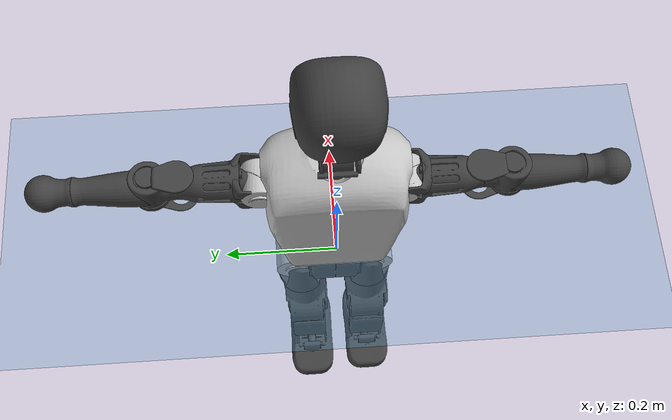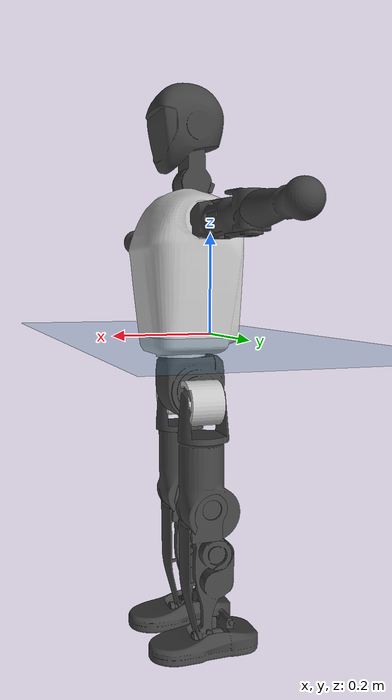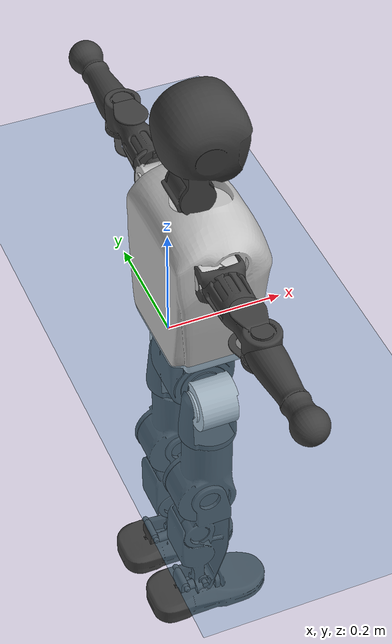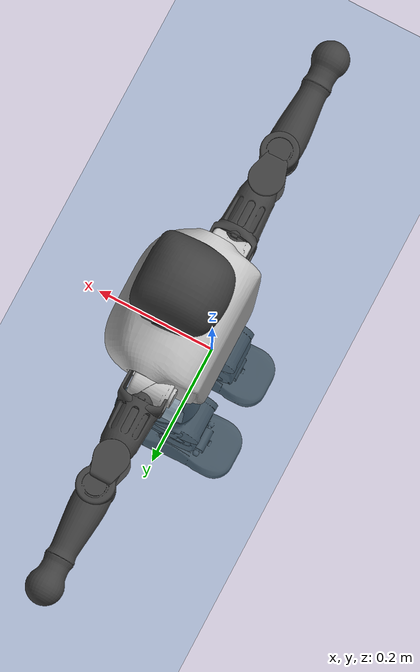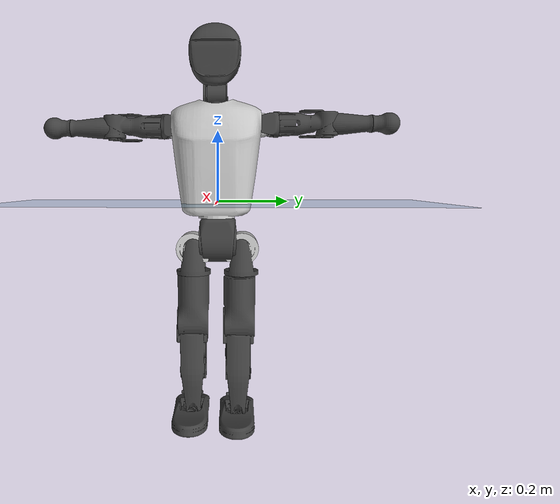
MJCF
<mujoco model="T1">
  <compiler angle="radian" assetdir="assets" balanceinertia="true" inertiafromgeom="false"/>

  <option timestep="0.005" density="1.2" viscosity="2e-05"/>

  <size nkey="1"/>

  <visual>
    <quality shadowsize="8192"/>
    <map shadowclip="0.5"/>
  </visual>

  <default>
    <default class="/">
      <joint armature="0.01" damping="0.01" frictionloss="0.1"/>
      <geom contype="0" conaffinity="0" group="1" solref="-1000 -80"/>
      <site size="0.01 0.005 0.005" group="5"/>
      <general forcelimited="true" biastype="affine" gainprm="25" biasprm="0 -25 -0.6"/>
      <default class="t1">
        <geom rgba="0.25 0.25 0.25 1"/>
        <default class="visual">
          <geom type="mesh" group="2"/>
        </default>
        <default class="collision">
          <geom group="3"/>
        </default>
        <default class="foot">
          <geom size="0.1115 0.05 0.015" type="box" condim="6" group="4" priority="1" solimp="0.015 1 0.015"/>
        </default>
        <default class="reward_collision_sphere">
          <geom group="5" rgba="1 0 0 1"/>
        </default>
      </default>
    </default>
  </default>

  <asset>
    <texture type="skybox" colorspace="auto" name="//unnamed_texture_0" builtin="gradient" rgb1="0.95 0.95 0.95" rgb2="0.95 0.95 0.95" width="100" height="600"/>
    <texture type="2d" colorspace="auto" name="texplane" builtin="checker" rgb1="0.345 0.575 0.748" rgb2="0.345 0.575 0.748" markrgb="1 1 1" width="512" height="512"/>
    <material name="MatPlane" class="/" texture="texplane" texuniform="true" texrepeat="2 2" specular="0.9"/>
    <mesh name="Trunk" class="/" file="Trunk.stl"/>
    <mesh name="H1" class="/" file="H1.stl"/>
    <mesh name="H2" class="/" file="H2.stl"/>
    <mesh name="AL1" class="/" file="AL1.stl"/>
    <mesh name="AL2" class="/" file="AL2.stl"/>
    <mesh name="AL3" class="/" file="AL3.stl"/>
    <mesh name="left_hand_link" class="/" file="left_hand_link.stl"/>
    <mesh name="AR1" class="/" file="AR1.stl"/>
    <mesh name="AR2" class="/" file="AR2.stl"/>
    <mesh name="AR3" class="/" file="AR3.stl"/>
    <mesh name="right_hand_link" class="/" file="right_hand_link.stl"/>
    <mesh name="Waist" class="/" file="Waist.stl"/>
    <mesh name="Hip_Pitch_Left" class="/" file="Hip_Pitch_Left.stl"/>
    <mesh name="Hip_Roll_Left" class="/" file="Hip_Roll_Left.stl"/>
    <mesh name="Hip_Yaw_Left" class="/" file="Hip_Yaw_Left.stl"/>
    <mesh name="Shank_Left" class="/" file="Shank_Left.stl"/>
    <mesh name="Ankle_Cross_Left" class="/" file="Ankle_Cross_Left.stl"/>
    <mesh name="left_foot_link" class="/" file="left_foot_link.stl"/>
    <mesh name="Hip_Pitch_Right" class="/" file="Hip_Pitch_Right.stl"/>
    <mesh name="Hip_Roll_Right" class="/" file="Hip_Roll_Right.stl"/>
    <mesh name="Hip_Yaw_Right" class="/" file="Hip_Yaw_Right.stl"/>
    <mesh name="Shank_Right" class="/" file="Shank_Right.stl"/>
    <mesh name="Ankle_Cross_Right" class="/" file="Ankle_Cross_Right.stl"/>
    <mesh name="right_foot_link" class="/" file="right_foot_link.stl"/>
  </asset>

  <worldbody>
    <geom name="floor" class="/" size="100 100 0.125" type="plane" group="0" material="MatPlane"/>
    <light name="toplight_shadow" class="/" pos="0 0 5" dir="0.0990148 0.0990148 -0.990148" type="directional" ambient="0.04 0.04 0.04" diffuse="0.55 0.55 0.55" specular="0.12 0.12 0.12"/>
    <light name="toplight_fill" class="/" pos="0 0 5" dir="0.0990148 0.0990148 -0.990148" type="directional" castshadow="false" ambient="0.04 0.04 0.04" diffuse="0.3 0.3 0.3" specular="0.08 0.08 0.08"/>
    <body name="trunk" childclass="t1" pos="-0.000767217 -0.00105538 0.000143662" quat="0.999998 0.00111009 0.00135843 0.000463477">
      <inertial pos="0.0375885 0.00158542 0.0980503" quat="0.999991 0.00156821 -0.00359252 0.0013621" mass="5.3247" diaginertia="0.0114495 0.0111275 0.0451844"/>
      <joint name="//unnamed_joint_0" type="free" armature="0" damping="0" frictionloss="0"/>
      <geom name="//unnamed_geom_1" class="visual" rgba="0.76 0.76 0.76 1" mesh="Trunk"/>
      <geom name="//unnamed_geom_2" class="collision" size="0.0571839 0.0762453 0.114368" pos="0.0397432 0 0.113472" type="box"/>
      <geom name="//unnamed_geom_3" class="reward_collision_sphere" size="0.087682" pos="0.0397432 0 0.0945599"/>
      <geom name="//unnamed_geom_4" class="reward_collision_sphere" size="0.0114368" pos="0.0397432 0.0577466 0"/>
      <geom name="//unnamed_geom_5" class="reward_collision_sphere" size="0.0114368" pos="0.0397432 -0.0577466 0"/>
      <geom name="//unnamed_geom_6" class="reward_collision_sphere" size="0.0114368" pos="0.0397432 0.0726927 0.170208"/>
      <geom name="//unnamed_geom_7" class="reward_collision_sphere" size="0.0114368" pos="0.0397432 -0.0726927 0.170208"/>
      <site name="imu" pos="-0.00300376 0.0126021 0.00312075" size="0.00762453"/>
      <camera name="track" pos="0 -1.35874 0" quat="0.707107 0.707107 0 0" mode="trackcom"/>
      <camera name="ego_camera" pos="0.0808112 0 0.397152" quat="-0.5 -0.5 0.5 0.5"/>
      <body name="H1" pos="0.0383592 0.000933522 0.232883" quat="1 -0.000198996 0.000692108 -0.000407622">
        <inertial pos="-0.00156486 -0.00549091 0.0556226" quat="0.759216 -0.0265177 -0.00648433 0.650266" mass="0.20763" diaginertia="3.26486e-05 3.54259e-05 0.000121531"/>
        <joint name="AAHead_yaw" pos="0 0 0" axis="0.0164985 0.00643012 0.999843" range="-1.6153 1.5271" armature="0.00761306" damping="0.0119781" frictionloss="0.0793096"/>
        <geom name="//unnamed_geom_8" class="visual" mesh="H1"/>
        <body name="H2" pos="-0.0013389 -0.00384636 0.0597627" quat="0.999999 -0.00125209 -1.73872e-05 -0.000376933">
          <inertial pos="0.00162513 -0.0024265 0.0921748" quat="0.987443 0.105271 -0.0759887 -0.0900026" mass="0.272043" diaginertia="0.000246827 0.000281726 0.00127447"/>
          <joint name="Head_pitch" pos="0 0 0" axis="-0.0076965 -0.999964 -0.00352067" range="-1.22272 0.342926" armature="0.00909082" damping="0.00212164" frictionloss="0.0553118"/>
          <geom name="//unnamed_geom_9" class="visual" mesh="H2"/>
          <geom name="//unnamed_geom_10" class="collision" size="0.0609962" pos="0.00662387 0 0.104016"/>
          <geom name="//unnamed_geom_11" class="reward_collision_sphere" size="0.0686207" pos="0.0132477 0 0.0945599"/>
        </body>
      </body>
      <body name="AL1" pos="0.0378855 0.0781377 0.211308" quat="1 0.000101078 0.000366299 -2.96287e-05">
        <inertial pos="0.00322723 0.0322242 -0.00354075" quat="0.499503 0.49266 -0.505559 0.502189" mass="0.229112" diaginertia="0.000167885 0.000181733 0.000217957"/>
        <joint name="Left_Shoulder_Pitch" pos="0 0 0" axis="-0.00661223 0.999802 0.0187441" stiffness="0.00841547" range="-3.31492 1.20161" armature="0.00667939" damping="0.00553897" frictionloss="0.0735522"/>
        <geom name="//unnamed_geom_12" class="visual" rgba="0.76 0.76 0.76 1" mesh="AL1"/>
        <body name="AL2" pos="0.00481887 0.0368442 0.000639529" quat="1 -1.64881e-05 -3.53802e-07 -0.000106074">
          <inertial pos="0.00346259 0.0249178 0.00224969" quat="0.486618 0.506749 -0.489672 0.516361" mass="0.0752136" diaginertia="5.17196e-05 5.01339e-05 0.000137773"/>
          <joint name="Left_Shoulder_Roll" pos="0 0 0" axis="-0.999974 -0.00380198 0.00605142" range="-1.57722 1.78595" armature="0.00784926" damping="0.00908997" frictionloss="0.0789767"/>
          <geom name="//unnamed_geom_13" class="visual" mesh="AL2"/>
          <body name="AL3" pos="-0.000521062 0.0406888 0.00165953" quat="1 0.000320631 -9.69142e-05 -0.000128544">
            <inertial pos="-0.00068471 0.05756 0.000935871" quat="0.719651 0.694286 -0.00219563 -0.00809737" mass="0.435161" diaginertia="0.00161421 0.00178543 0.000485994"/>
            <joint name="Left_Elbow_Pitch" pos="0 0 0" axis="-0.00419805 -0.999991 -3.98636e-05" range="-2.31871 2.21906" armature="0.00736639" damping="0" frictionloss="0.0592752"/>
            <geom name="//unnamed_geom_14" class="visual" mesh="AL3"/>
            <geom name="//unnamed_geom_15" class="collision" size="0.0228736 0.0571839" pos="0 0.0339686 0" quat="0.707105 0.707108 0 0" type="cylinder"/>
            <geom name="//unnamed_geom_16" class="reward_collision_sphere" size="0.0274483"/>
            <body name="left_hand_link" pos="-0.00265626 0.0998583 -0.000107513" quat="0.999999 0.000874925 -0.000657155 -0.00041121">
              <inertial pos="-0.00291446 0.0750645 0.00291651" quat="0.708748 0.705374 0.00941806 -0.00602112" mass="0.145583" diaginertia="0.00105414 0.00113063 0.000158764"/>
              <joint name="Left_Elbow_Yaw" pos="0 0 0" axis="0.000737998 -0.0057898 0.999983" range="-2.45769 -0.0509142" armature="0.00763307" damping="0.0146934" frictionloss="0.0759349"/>
              <geom name="//unnamed_geom_17" class="visual" mesh="left_hand_link"/>
              <geom name="//unnamed_geom_18" class="collision" size="0.0228736 0.0667146" pos="0 0.0883183 0" quat="0.707105 0.707108 0 0" type="cylinder"/>
              <geom name="//unnamed_geom_19" class="reward_collision_sphere" size="0.0381226"/>
              <geom name="//unnamed_geom_20" class="reward_collision_sphere" size="0.0266858" pos="0 0.0747309 0"/>
              <geom name="//unnamed_geom_21" class="reward_collision_sphere" size="0.0266858" pos="0 0.146065 0"/>
            </body>
          </body>
        </body>
      </body>
      <body name="AR1" pos="0.035045 -0.0667934 0.205342" quat="0.999997 0.000516214 -0.00222095 -0.000321526">
        <inertial pos="-0.000784116 -0.0325877 0.00162423" quat="0.504657 0.494759 -0.504501 0.495998" mass="0.222559" diaginertia="0.000168148 0.000174837 0.000210847"/>
        <joint name="Right_Shoulder_Pitch" pos="0 0 0" axis="0.00466312 -0.999878 -0.0149217" range="-1.22354 3.29166" armature="0.00678841" damping="0.00251394" frictionloss="0.0704532"/>
        <geom name="//unnamed_geom_22" class="visual" rgba="0.76 0.76 0.76 1" mesh="AR1"/>
        <body name="AR2" pos="-0.000657582 -0.0286857 0.00383029" quat="1 -0.000634442 -2.80766e-05 0.000699674">
          <inertial pos="0.000514645 -0.0240622 -0.000888973" quat="0.510679 0.490303 -0.509922 0.488662" mass="0.0713344" diaginertia="5.13064e-05 5.08955e-05 0.000135874"/>
          <joint name="Right_Shoulder_Roll" pos="0 0 0" axis="-0.999901 0.0046542 -0.0132718" range="-1.76432 1.54782" armature="0.00774798" damping="0.0143334" frictionloss="0.068195"/>
          <geom name="//unnamed_geom_23" class="visual" mesh="AR2"/>
          <body name="AR3" pos="-0.000670006 -0.0416852 -0.000314987" quat="0.999999 -0.000482305 0.00104004 0.000723919">
            <inertial pos="-0.0055586 -0.0570425 0.00222121" quat="0.711381 0.702717 0.0110681 0.00167878" mass="0.445923" diaginertia="0.00157451 0.00169428 0.00043634"/>
            <joint name="Right_Elbow_Pitch" pos="0 0 0" axis="0.000221863 0.999994 -0.00334247" range="-2.30734 2.38658" armature="0.00743421" damping="0.00677198" frictionloss="0.0805787"/>
            <geom name="//unnamed_geom_24" class="visual" mesh="AR3"/>
            <geom name="//unnamed_geom_25" class="collision" size="0.0228736 0.0571839" pos="0 -0.0339686 0" quat="0.707105 0.707108 0 0" type="cylinder"/>
            <geom name="//unnamed_geom_26" class="reward_collision_sphere" size="0.0274483"/>
            <body name="right_hand_link" pos="-0.00178278 -0.0996896 -0.00324569" quat="0.999999 -0.000167439 9.56092e-05 0.000995292">
              <inertial pos="-0.00458827 -0.0722222 0.00368443" quat="0.705544 0.708656 0.000406175 -0.00371721" mass="0.158881" diaginertia="0.00118486 0.00125374 0.000164853"/>
              <joint name="Right_Elbow_Yaw" pos="0 0 0" axis="-0.0070382 0.00381081 0.999968" range="0.000316842 2.49448" armature="0.00694827" damping="0.0164964" frictionloss="0.0736133"/>
              <geom name="//unnamed_geom_27" class="visual" mesh="right_hand_link"/>
              <geom name="//unnamed_geom_28" class="collision" size="0.0228736 0.0667146" pos="0 -0.0883183 0" quat="0.707105 0.707108 0 0" type="cylinder"/>
              <geom name="//unnamed_geom_29" class="reward_collision_sphere" size="0.0381226"/>
              <geom name="//unnamed_geom_30" class="reward_collision_sphere" size="0.0266858" pos="0 -0.0747309 0"/>
              <geom name="//unnamed_geom_31" class="reward_collision_sphere" size="0.0266858" pos="0 -0.146065 0"/>
            </body>
          </body>
        </body>
      </body>
      <body name="Waist" pos="0.045187 0.0028429 -0.108005" quat="1 0.000183564 0.000263846 6.5919e-05">
        <inertial pos="0.00542885 -0.00178786 0.00493172" quat="0.983547 -0.00260499 -0.180632 -0.00103972" mass="1.17223" diaginertia="0.00066308 0.000759497 0.00363981"/>
        <joint name="Waist" pos="0 0 0" axis="0.00848479 0.00675313 0.999941" range="-1.59741 1.53604" armature="0.00819782" damping="0.0263998" frictionloss="0.0778469"/>
        <geom name="//unnamed_geom_32" class="visual" mesh="Waist"/>
        <body name="Hip_Pitch_Left" pos="0.000662029 0.0691125 5.32798e-05" quat="1 -0.000125875 -2.37447e-05 -1.78817e-05">
          <inertial pos="-0.00069069 -0.00389749 -0.0140962" quat="0.97674 0.214081 0.00945226 0.00765888" mass="0.454277" diaginertia="0.000226289 0.000208419 0.000927674"/>
          <joint name="Left_Hip_Pitch" pos="0 0 0" axis="-0.00401192 0.999963 0.00758663" stiffness="0.000654278" range="-1.75499 1.51829" armature="0.00667571" damping="0.0122232" frictionloss="0.0761423"/>
          <geom name="//unnamed_geom_33" class="visual" rgba="0.76 0.76 0.76 1" mesh="Hip_Pitch_Left"/>
          <body name="Hip_Roll_Left" pos="-0.00353364 -0.00363899 -0.0185406" quat="0.999999 -0.00113244 -0.000141992 -0.000124097">
            <inertial pos="-0.00151334 -0.00049204 -0.0486017" quat="0.709056 -0.00674308 0.00405547 0.705108" mass="0.166915" diaginertia="0.000209658 0.000219482 0.000394043"/>
            <joint name="Left_Hip_Roll" pos="0 0 0" axis="-0.99996 0.000924542 0.00887973" stiffness="0.0149489" range="-1.60223 0.127979" armature="0.00859255" damping="0.0174268" frictionloss="0.083767"/>
            <geom name="//unnamed_geom_34" class="visual" mesh="Hip_Roll_Left"/>
            <geom name="//unnamed_geom_35" class="reward_collision_sphere" size="0.0419349"/>
            <body name="Hip_Yaw_Left" pos="-0.000301046 -0.00428257 -0.0838593" quat="1 -0.000455122 -0.000163108 0.00041123">
              <inertial pos="-0.00544473 -0.000387469 -0.0822611" quat="0.702447 -0.0240774 -0.0316855 0.710623" mass="0.992885" diaginertia="0.00341856 0.0039114 0.00201359"/>
              <joint name="Left_Hip_Yaw" pos="0 0 0" axis="-0.000959563 0.00361547 -0.999993" range="-1.06904 0.894623" armature="0.0078087" damping="0.036647" frictionloss="0.0730592"/>
              <geom name="//unnamed_geom_36" class="visual" mesh="Hip_Yaw_Left"/>
              <geom name="//unnamed_geom_37" class="collision" size="0.0381226 0.0609962" type="cylinder"/>
              <body name="Shank_Left" pos="-0.00823482 -0.00345209 -0.123423" quat="1 0.000386549 0.000129502 0.000130542">
                <inertial pos="-0.00462108 0.00113106 -0.115374" quat="0.996948 0.0108317 -0.0236379 0.0736059" mass="0.738833" diaginertia="0.00430087 0.00489105 0.00140796"/>
                <joint name="Left_Knee_Pitch" pos="0 0 0" axis="0.0111943 0.999922 -0.00559867" range="0.010747 2.32787" armature="0.00781345" damping="0" frictionloss="0.0671922"/>
                <geom name="//unnamed_geom_38" class="visual" mesh="Shank_Left"/>
                <geom name="//unnamed_geom_39" class="collision" size="0.0381226 0.0571839" pos="0 0 -0.113472" type="cylinder"/>
                <geom name="//unnamed_geom_40" class="reward_collision_sphere" size="0.0495594"/>
                <body name="Ankle_Cross_Left" pos="-0.00363352 -0.00350788 -0.263128" quat="0.999999 -0.00134668 -0.000119108 -0.000342716">
                  <inertial pos="0.00120158 -0.00357936 -0.00813805" quat="0.442586 0.552368 0.548063 0.445683" mass="0.0324736" diaginertia="3.69922e-06 3.86651e-06 8.49729e-06"/>
                  <joint name="Left_Ankle_Pitch" pos="0 0 0" axis="-0.00541509 0.999955 -0.00784193" stiffness="0.00403121" range="-0.868794 0.39946" armature="0.0088067" damping="0.0171343" frictionloss="0.078061"/>
                  <geom name="//unnamed_geom_41" class="visual" mesh="Ankle_Cross_Left"/>
                  <body name="left_foot_link" pos="-0.00278029 0.000183726 -0.0147788" quat="0.999997 -0.00161085 0.000655048 -0.0015078">
                    <inertial pos="0.00335324 -6.50427e-05 -0.0104604" quat="0.00282076 0.619113 -0.00113331 0.785296" mass="0.298596" diaginertia="0.000340779 0.000350537 0.00159077"/>
                    <joint name="Left_Ankle_Roll" pos="0 0 0" axis="-0.999984 0.00564171 -0.000818613" stiffness="0.0101567" range="-0.379205 0.514987" armature="0.00792638" damping="0" frictionloss="0.0894193"/>
                    <geom name="//unnamed_geom_42" class="visual" mesh="left_foot_link"/>
                    <geom name="left_foot" class="foot" size="0.0963281 0.0377356 0.0104343" pos="0.00662387 0 -0.014184"/>
                    <geom name="//unnamed_geom_44" class="reward_collision_sphere" size="0.0396475" pos="0.00662387 0 -0.014184"/>
                    <geom name="//unnamed_geom_45" class="reward_collision_sphere" size="0.0228736" pos="0.0629268 -0.0156255 -0.014184"/>
                    <geom name="//unnamed_geom_46" class="reward_collision_sphere" size="0.0228736" pos="-0.0463671 -0.0156255 -0.014184"/>
                    <site name="left_foot" class="foot" pos="0.00662387 0 -0.014184" size="0.00762453"/>
                  </body>
                </body>
              </body>
            </body>
          </body>
        </body>
        <body name="Hip_Pitch_Right" pos="0.00562435 -0.0711574 -0.000278419" quat="0.999999 0.000537675 -0.000342985 0.00129476">
          <inertial pos="0.00172334 0.00627769 -0.0167632" quat="0.975065 -0.221361 0.0155393 0.00258436" mass="0.455597" diaginertia="0.000221415 0.000214168 0.000897561"/>
          <joint name="Right_Hip_Pitch" pos="0 0 0" axis="-0.00377163 -0.999975 -0.00600048" range="-1.60915 1.82599" armature="0.00743007" damping="0.0128128" frictionloss="0.0699059"/>
          <geom name="//unnamed_geom_47" class="visual" rgba="0.76 0.76 0.76 1" mesh="Hip_Pitch_Right"/>
          <body name="Hip_Roll_Right" pos="-0.00388879 0.00258413 -0.0170513" quat="1 -5.73636e-05 7.68691e-05 5.2304e-05">
            <inertial pos="0.00256554 0.00166188 -0.0514766" quat="0.707185 -0.00242408 -0.00322093 0.707017" mass="0.163796" diaginertia="0.000224056 0.00021705 0.000393546"/>
            <joint name="Right_Hip_Roll" pos="0 0 0" axis="-0.999941 0.00786513 -0.00746995" range="-0.198038 1.66482" armature="0.00863009" damping="0.0248557" frictionloss="0.0920619"/>
            <geom name="//unnamed_geom_48" class="visual" mesh="Hip_Roll_Right"/>
            <geom name="//unnamed_geom_49" class="reward_collision_sphere" size="0.0419349"/>
            <body name="Hip_Yaw_Right" pos="-0.00333551 -0.00144927 -0.078393" quat="1 0.000527587 7.61879e-05 -4.39864e-05">
              <inertial pos="-0.00696721 0.000144436 -0.0847458" quat="0.70825 -0.0081291 -0.024821 0.705479" mass="0.979398" diaginertia="0.00346191 0.00367112 0.00206251"/>
              <joint name="Right_Hip_Yaw" pos="0 0 0" axis="0.0212971 -0.0158127 -0.999648" range="-0.997361 1.00352" armature="0.00822813" damping="0" frictionloss="0.0823514"/>
              <geom name="//unnamed_geom_50" class="visual" mesh="Hip_Yaw_Right"/>
              <geom name="//unnamed_geom_51" class="collision" size="0.0381226 0.0609962" type="cylinder"/>
              <body name="Shank_Right" pos="-0.0127849 -0.00351627 -0.127541" quat="1 2.31412e-05 -4.47644e-05 6.21899e-05">
                <inertial pos="-0.00343934 0.00182151 -0.114118" quat="0.998919 -0.0108781 -0.0385654 -0.0235581" mass="0.760389" diaginertia="0.00429068 0.00498682 0.00145423"/>
                <joint name="Right_Knee_Pitch" pos="0 0 0" axis="-0.0161016 -0.999869 0.0018577" stiffness="0.0209915" range="-2.32124 -0.0103131" armature="0.0075563" damping="0" frictionloss="0.0719738"/>
                <geom name="//unnamed_geom_52" class="visual" mesh="Shank_Right"/>
                <geom name="//unnamed_geom_53" class="collision" size="0.0381226 0.0571839" pos="0 0 -0.113472" type="cylinder"/>
                <geom name="//unnamed_geom_54" class="reward_collision_sphere" size="0.0495594"/>
                <body name="Ankle_Cross_Right" pos="0.00403091 -0.00280211 -0.261028" quat="0.999999 -5.26664e-05 -0.00113502 -0.000617235">
                  <inertial pos="-0.00441613 -0.00151052 -0.00772039" quat="0.443138 0.550836 0.551457 0.442835" mass="0.0319831" diaginertia="3.95793e-06 3.72884e-06 8.70339e-06"/>
                  <joint name="Right_Ankle_Pitch" pos="0 0 0" axis="-0.00130569 -0.999994 0.00322039" stiffness="0.00556807" range="-0.238315 0.866514" armature="0.00824037" damping="0.00562736" frictionloss="0.0674036"/>
                  <geom name="//unnamed_geom_55" class="visual" mesh="Ankle_Cross_Right"/>
                  <body name="right_foot_link" pos="-0.000709997 -0.00415161 -0.0108885" quat="1 -4.08408e-05 1.07399e-05 6.10672e-05">
                    <inertial pos="-0.000174247 -0.00160425 -0.0091642" quat="-0.00511656 0.621221 0.00230305 0.783616" mass="0.274876" diaginertia="0.000324787 0.000334256 0.00165548"/>
                    <joint name="Right_Ankle_Roll" pos="0 0 0" axis="-0.999933 -0.00622991 -0.00978164" range="-0.487812 0.428356" armature="0.00811742" damping="0.00983344" frictionloss="0.0934715"/>
                    <geom name="//unnamed_geom_56" class="visual" mesh="right_foot_link"/>
                    <geom name="right_foot" class="foot" size="0.0940265 0.0435856 0.0107938" pos="0.00662387 0 -0.014184"/>
                    <geom name="//unnamed_geom_58" class="reward_collision_sphere" size="0.0304981"/>
                    <geom name="//unnamed_geom_59" class="reward_collision_sphere" size="0.0228736" pos="0.00662387 0 -0.014184"/>
                    <geom name="//unnamed_geom_60" class="reward_collision_sphere" size="0.0228736" pos="0.0629268 0.0156255 -0.014184"/>
                    <geom name="//unnamed_geom_61" class="reward_collision_sphere" size="0.0228736" pos="-0.0463671 0.0156255 -0.014184"/>
                    <site name="right_foot" class="foot" pos="0.00662387 0 -0.014184" size="0.00762453"/>
                  </body>
                </body>
              </body>
            </body>
          </body>
        </body>
      </body>
    </body>
  </worldbody>

  <contact>
    <pair class="/" geom1="floor" geom2="left_foot" name="//unnamed_contact_0"/>
    <pair class="/" geom1="floor" geom2="right_foot" name="//unnamed_contact_1"/>
  </contact>

  <actuator>
    <general name="AAHead_yaw" class="/" joint="AAHead_yaw" forcerange="-4.88608 4.88608" gainprm="21.3186" biasprm="0 -21.3186 -0.463418"/>
    <general name="Head_pitch" class="/" joint="Head_pitch" forcerange="-5.80429 5.80429" gainprm="21.3186" biasprm="0 -21.3186 -0.463418"/>
    <general name="Left_Shoulder_Pitch" class="/" joint="Left_Shoulder_Pitch" forcerange="-16.6122 16.6122" gainprm="21.3186" biasprm="0 -21.3186 -0.463418"/>
    <general name="Left_Shoulder_Roll" class="/" joint="Left_Shoulder_Roll" forcerange="-14.1352 14.1352" gainprm="21.3186" biasprm="0 -21.3186 -0.463418"/>
    <general name="Left_Elbow_Pitch" class="/" joint="Left_Elbow_Pitch" forcerange="-13.1857 13.1857" gainprm="21.3186" biasprm="0 -21.3186 -0.463418"/>
    <general name="Left_Elbow_Yaw" class="/" joint="Left_Elbow_Yaw" forcerange="-13.8921 13.8921" gainprm="21.3186" biasprm="0 -21.3186 -0.463418"/>
    <general name="Right_Shoulder_Pitch" class="/" joint="Right_Shoulder_Pitch" forcerange="-12.5921 12.5921" gainprm="21.3186" biasprm="0 -21.3186 -0.463418"/>
    <general name="Right_Shoulder_Roll" class="/" joint="Right_Shoulder_Roll" forcerange="-13.8691 13.8691" gainprm="21.3186" biasprm="0 -21.3186 -0.463418"/>
    <general name="Right_Elbow_Pitch" class="/" joint="Right_Elbow_Pitch" forcerange="-13.4268 13.4268" gainprm="21.3186" biasprm="0 -21.3186 -0.463418"/>
    <general name="Right_Elbow_Yaw" class="/" joint="Right_Elbow_Yaw" forcerange="-13.3706 13.3706" gainprm="21.3186" biasprm="0 -21.3186 -0.463418"/>
    <general name="Waist" class="/" joint="Waist" forcerange="-22.3297 22.3297" gainprm="21.3186" biasprm="0 -21.3186 -0.463418"/>
    <general name="Left_Hip_Pitch" class="/" joint="Left_Hip_Pitch" forcerange="-32.5012 32.5012" gainprm="21.3186" biasprm="0 -21.3186 -0.463418"/>
    <general name="Left_Hip_Roll" class="/" joint="Left_Hip_Roll" forcerange="-22.0502 22.0502" gainprm="21.3186" biasprm="0 -21.3186 -0.463418"/>
    <general name="Left_Hip_Yaw" class="/" joint="Left_Hip_Yaw" forcerange="-22.1258 22.1258" gainprm="21.3186" biasprm="0 -21.3186 -0.463418"/>
    <general name="Left_Knee_Pitch" class="/" joint="Left_Knee_Pitch" forcerange="-48.4123 48.4123" gainprm="21.3186" biasprm="0 -21.3186 -0.463418"/>
    <general name="Left_Ankle_Pitch" class="/" joint="Left_Ankle_Pitch" forcerange="-12.8729 12.8729" gainprm="21.3186" biasprm="0 -21.3186 -0.463418"/>
    <general name="Left_Ankle_Roll" class="/" joint="Left_Ankle_Roll" forcerange="-12.7227 12.7227" gainprm="21.3186" biasprm="0 -21.3186 -0.463418"/>
    <general name="Right_Hip_Pitch" class="/" joint="Right_Hip_Pitch" forcerange="-35.1377 35.1377" gainprm="21.3186" biasprm="0 -21.3186 -0.463418"/>
    <general name="Right_Hip_Roll" class="/" joint="Right_Hip_Roll" forcerange="-20.2349 20.2349" gainprm="21.3186" biasprm="0 -21.3186 -0.463418"/>
    <general name="Right_Hip_Yaw" class="/" joint="Right_Hip_Yaw" forcerange="-23.9428 23.9428" gainprm="21.3186" biasprm="0 -21.3186 -0.463418"/>
    <general name="Right_Knee_Pitch" class="/" joint="Right_Knee_Pitch" forcerange="-46.3072 46.3072" gainprm="21.3186" biasprm="0 -21.3186 -0.463418"/>
    <general name="Right_Ankle_Pitch" class="/" joint="Right_Ankle_Pitch" forcerange="-14.8582 14.8582" gainprm="21.3186" biasprm="0 -21.3186 -0.463418"/>
    <general name="Right_Ankle_Roll" class="/" joint="Right_Ankle_Roll" forcerange="-10.5191 10.5191" gainprm="21.3186" biasprm="0 -21.3186 -0.463418"/>
  </actuator>

  <sensor>
    <gyro site="imu" name="imu_angular_velocity"/>
    <velocimeter site="imu" name="imu_linear_velocity"/>
    <framelinvel objtype="site" objname="left_foot" name="left_foot_global_linear_velocity"/>
    <framelinvel objtype="site" objname="right_foot" name="right_foot_global_linear_velocity"/>
  </sensor>

  <keyframe>
    <key name="home" qpos="0 0 0.6385 1 0 0 0 0 0 0 1.4 0 -0.4 0 -1.4 0 0.4 0 -0.4 0 0 0.8 -0.4 0 0.4 0 0 -0.8 0.4 0"/>
  </keyframe>
</mujoco>
